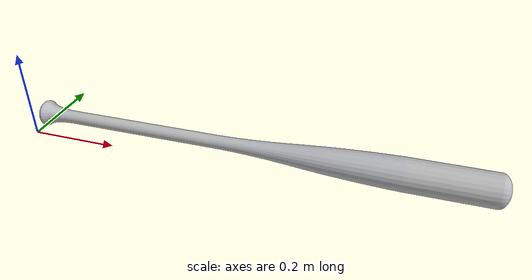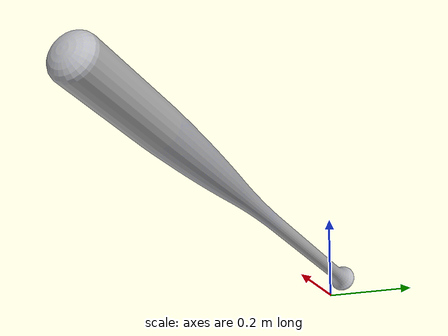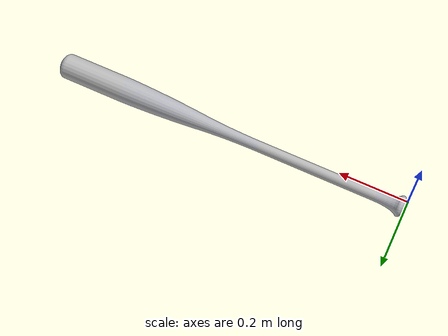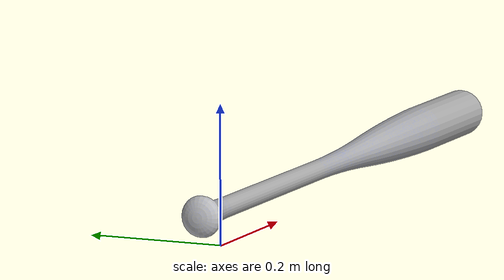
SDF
<?xml version="1.0" ?>
<sdf version="1.5">
  <model name="Baseball Bat">
    <static>true</static>
    <link name="link">
      <visual name="visual">
        <geometry>
          <mesh>
            <pose degrees="true">0 0 0 0 0 0</pose>
            <uri>model://bat_0/bat.dae</uri>
          </mesh>
        </geometry>
      </visual>
    </link>
  </model>
</sdf>
